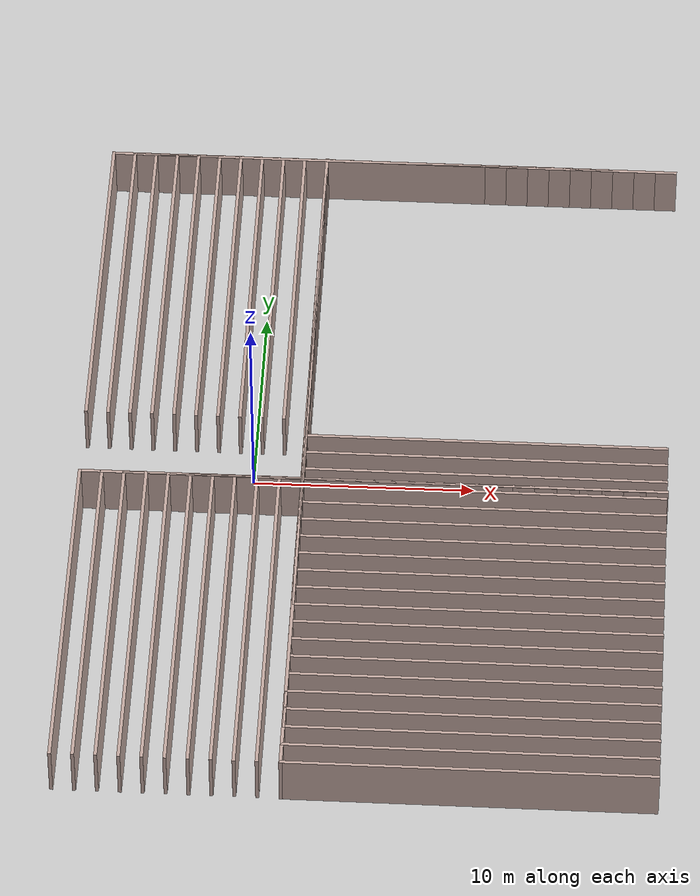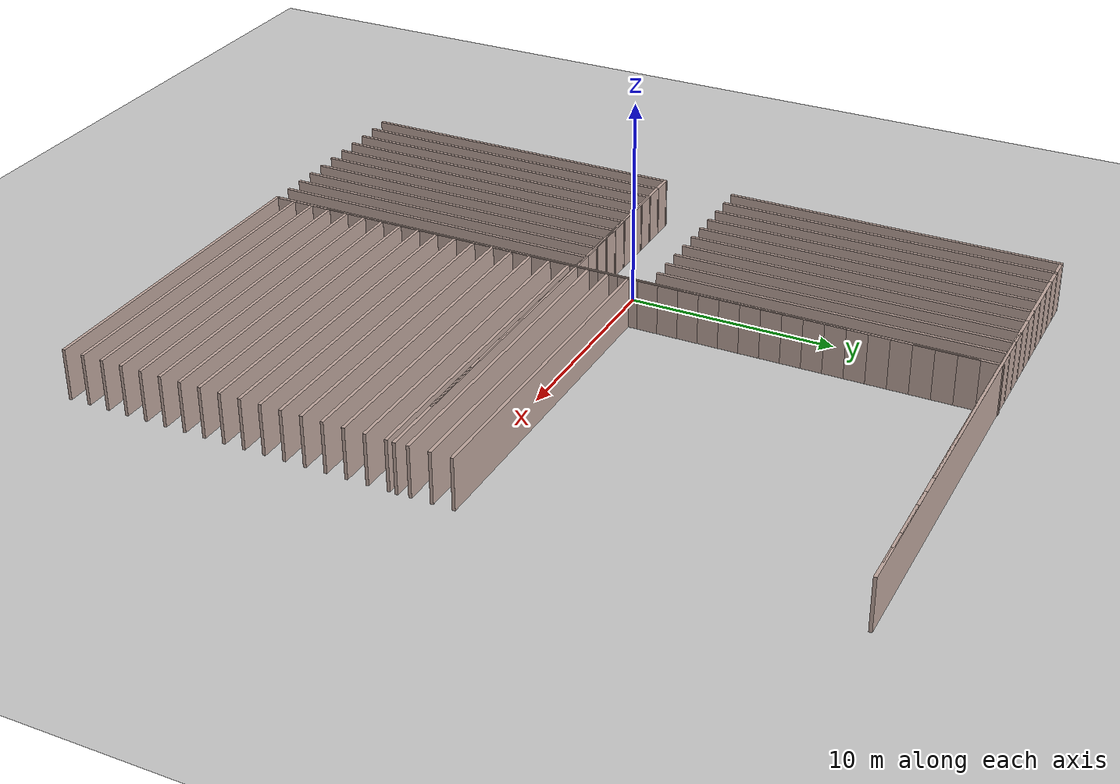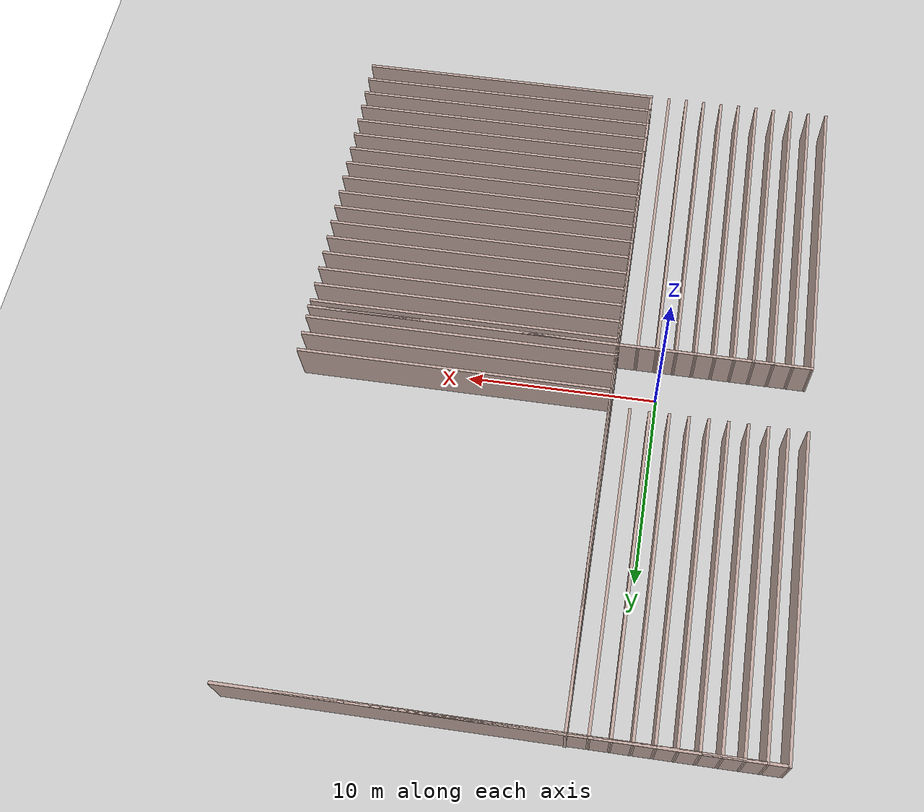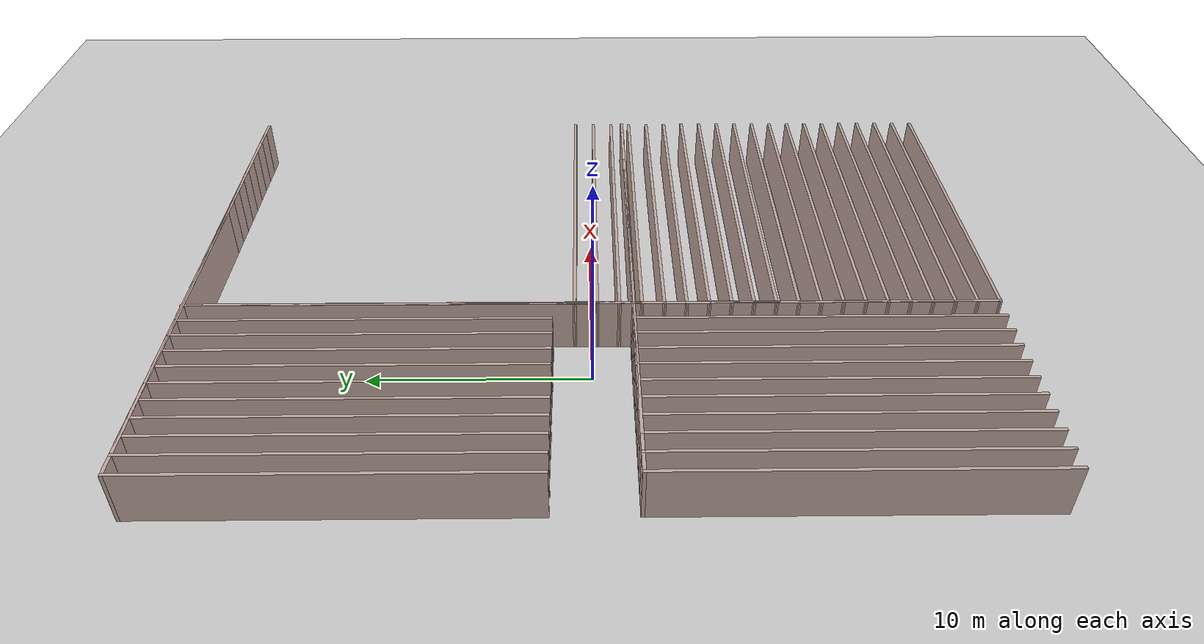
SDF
<?xml version="1.0" ?>

<sdf version="1.5">
	<world name="default">
		<!-- A global light source -->
		<include>
			<uri>model://sun</uri>
		</include>

		<!-- A ground plane -->
		<include>
			<uri>model://ground_plane</uri>
		</include>

        <!-- Left wall -->

        <include>
            <uri>model://wall</uri>
            <name>wall_left_01</name>
            <pose>1 10 0 0 0 0</pose>
        </include>

        <include>
            <uri>model://wall</uri>
            <name>wall_left_02</name>
            <pose>2 10 0 0 0 0</pose>
        </include>

        <include>
            <uri>model://wall</uri>
            <name>wall_left_03</name>
            <pose>3 10 0 0 0 0</pose>
        </include>

        <include>
            <uri>model://wall</uri>
            <name>wall_left_04</name>
            <pose>4 10 0 0 0 0</pose>
        </include>

        <include>
            <uri>model://wall</uri>
            <name>wall_left_05</name>
            <pose>5 10 0 0 0 0</pose>
        </include>

        <include>
            <uri>model://wall</uri>
            <name>wall_left_06</name>
            <pose>6 10 0 0 0 0</pose>
        </include>

        <include>
            <uri>model://wall</uri>
            <name>wall_left_07</name>
            <pose>7 10 0 0 0 0</pose>
        </include>

        <include>
            <uri>model://wall</uri>
            <name>wall_left_08</name>
            <pose>8 10 0 0 0 0</pose>
        </include>

        <include>
            <uri>model://wall</uri>
            <name>wall_left_09</name>
            <pose>9 10 0 0 0 0</pose>
        </include>

        <include>
            <uri>model://wall</uri>
            <name>wall_left_10</name>
            <pose>10 10 0 0 0 0</pose>
        </include>

	<!-- Front wall -->

        <include>
            <uri>model://wall</uri>
            <name>wall_left_11</name>
            <pose>10.5 9.5 0 0 0 1.57</pose>
        </include>

        <include>
            <uri>model://wall</uri>
            <name>wall_left_12</name>
            <pose>10.5 8.5 0 0 0 1.57</pose>
        </include>

        <include>
            <uri>model://wall</uri>
            <name>wall_left_13</name>
            <pose>10.5 7.5 0 0 0 1.57</pose>
        </include>

        <include>
            <uri>model://wall</uri>
            <name>wall_left_14</name>
            <pose>10.5 6.5 0 0 0 1.57</pose>
        </include>

        <include>
            <uri>model://wall</uri>
            <name>wall_left_15</name>
            <pose>10.5 5.5 0 0 0 1.57</pose>
        </include>

        <include>
            <uri>model://wall</uri>
            <name>wall_right_01</name>
            <pose>10.5 4.5 0 0 0 1.57</pose>
        </include>

        <include>
            <uri>model://wall</uri>
            <name>wall_right_02</name>
            <pose>10.5 3.5 0 0 0 1.57</pose>
        </include>

        <include>
            <uri>model://wall</uri>
            <name>wall_right_03</name>
            <pose>10.5 2.5 0 0 0 1.57</pose>
        </include>

        <include>
            <uri>model://wall</uri>
            <name>wall_right_04</name>
            <pose>10.5 1.5 0 0 0 1.57</pose>
        </include>

        <include>
            <uri>model://wall</uri>
            <name>wall_right_05</name>
            <pose>10.5 0.5 0 0 0 1.57</pose>
        </include>

        <include>
            <uri>model://wall</uri>
            <name>wall_right_06</name>
            <pose>10.5 -0.5 0 0 0 1.57</pose>
        </include>

        <include>
            <uri>model://wall</uri>
            <name>wall_right_07</name>
            <pose>10.5 -1.5 0 0 0 1.57</pose>
        </include>

        <include>
            <uri>model://wall</uri>
            <name>wall_right_08</name>
            <pose>10.5 -2.5 0 0 0 1.57</pose>
        </include>

        <include>
            <uri>model://wall</uri>
            <name>wall_right_09</name>
            <pose>10.5 -3.5 0 0 0 1.57</pose>
        </include>

        <include>
            <uri>model://wall</uri>
            <name>wall_right_10</name>
            <pose>10.5 -4.5 0 0 0 1.57</pose>
        </include>

        <include>
            <uri>model://wall</uri>
            <name>wall_right_11</name>
            <pose>10.5 -5.5 0 0 0 1.57</pose>
        </include>

        <include>
            <uri>model://wall</uri>
            <name>wall_right_12</name>
            <pose>10.5 -6.5 0 0 0 1.57</pose>
        </include>

        <include>
            <uri>model://wall</uri>
            <name>wall_right_13</name>
            <pose>10.5 -7.5 0 0 0 1.57</pose>
        </include>

	<include>
            <uri>model://wall</uri>
            <name>wall_right_16</name>
            <pose>10.5 -8.5 0 0 0 1.57</pose>
        </include>

	<include>
            <uri>model://wall</uri>
            <name>wall_right_17</name>
            <pose>10.5 -9.5 0 0 0 1.57</pose>
        </include>

	<!-- Right Wall -->

	<include>
            <uri>model://wall</uri>
            <name>wall_right_18</name>
            <pose>10 -10 0 0 0 0</pose>
        </include>

	<include>
            <uri>model://wall</uri>
            <name>wall_right_19</name>
            <pose>9 -10 0 0 0 0</pose>
        </include>

	<include>
            <uri>model://wall</uri>
            <name>wall_right_20</name>
            <pose>8 -10 0 0 0 0</pose>
        </include>

	<include>
            <uri>model://wall</uri>
            <name>wall_right_21</name>
            <pose>7 -10 0 0 0 0</pose>
        </include>

	<include>
            <uri>model://wall</uri>
            <name>wall_right_22</name>
            <pose>6 -10 0 0 0 0</pose>
        </include>

	<include>
            <uri>model://wall</uri>
            <name>wall_right_23</name>
            <pose>5 -10 0 0 0 0</pose>
        </include>

	<include>
            <uri>model://wall</uri>
            <name>wall_right_24</name>
            <pose>4 -10 0 0 0 0</pose>
        </include>

	<include>
            <uri>model://wall</uri>
            <name>wall_right_25</name>
            <pose>3 -10 0 0 0 0</pose>
        </include>

	<include>
            <uri>model://wall</uri>
            <name>wall_right_26</name>
            <pose>2 -10 0 0 0 0</pose>
        </include>

	<include>
            <uri>model://wall</uri>
            <name>wall_right_27</name>
            <pose>1 -10 0 0 0 0</pose>
        </include>

	</world>
</sdf>

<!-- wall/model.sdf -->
<sdf version='1.6'>
  <model name='wall'>
    <pose frame=''>-1.26581 1.80502 0 0 -0 0</pose>
    <link name='Wall_0'>
      <collision name='Wall_0_Collision'>
        <geometry>
          <box>
            <size>16.5 0.15 2.5</size>
          </box>
        </geometry>
        <pose frame=''>0 0 1.25 0 -0 0</pose>
      </collision>
      <visual name='Wall_0_Visual'>
        <pose frame=''>0 0 1.25 0 -0 0</pose>
        <geometry>
          <box>
            <size>16.5 0.15 2.5</size>
          </box>
        </geometry>
        <material>
          <script>
            <uri>file://media/materials/scripts/gazebo.material</uri>
            <name>Gazebo/Grey</name>
          </script>
          <ambient>0.760784 0.662745 0.627451 1</ambient>
        </material>
        <meta>
          <layer>0</layer>
        </meta>
      </visual>
      <pose frame=''>-8.71419 -1.8e-05 0 0 0 -1.5708</pose>
    </link>
    <link name='Wall_2'>
      <collision name='Wall_2_Collision'>
        <geometry>
          <box>
            <size>17.5784 0.15 2.5</size>
          </box>
        </geometry>
        <pose frame=''>0 0 1.25 0 -0 0</pose>
      </collision>
      <visual name='Wall_2_Visual'>
        <pose frame=''>0 0 1.25 0 -0 0</pose>
        <geometry>
          <box>
            <size>17.5784 0.15 2.5</size>
          </box>
        </geometry>
        <material>
          <script>
            <uri>file://media/materials/scripts/gazebo.material</uri>
            <name>Gazebo/Grey</name>
          </script>
          <ambient>0.760784 0.662745 0.627451 1</ambient>
        </material>
        <meta>
          <layer>0</layer>
        </meta>
      </visual>
      <pose frame=''>0 8.17066 0 0 0 -0.000496</pose>
    </link>
    <static>1</static>
  </model>
</sdf>
